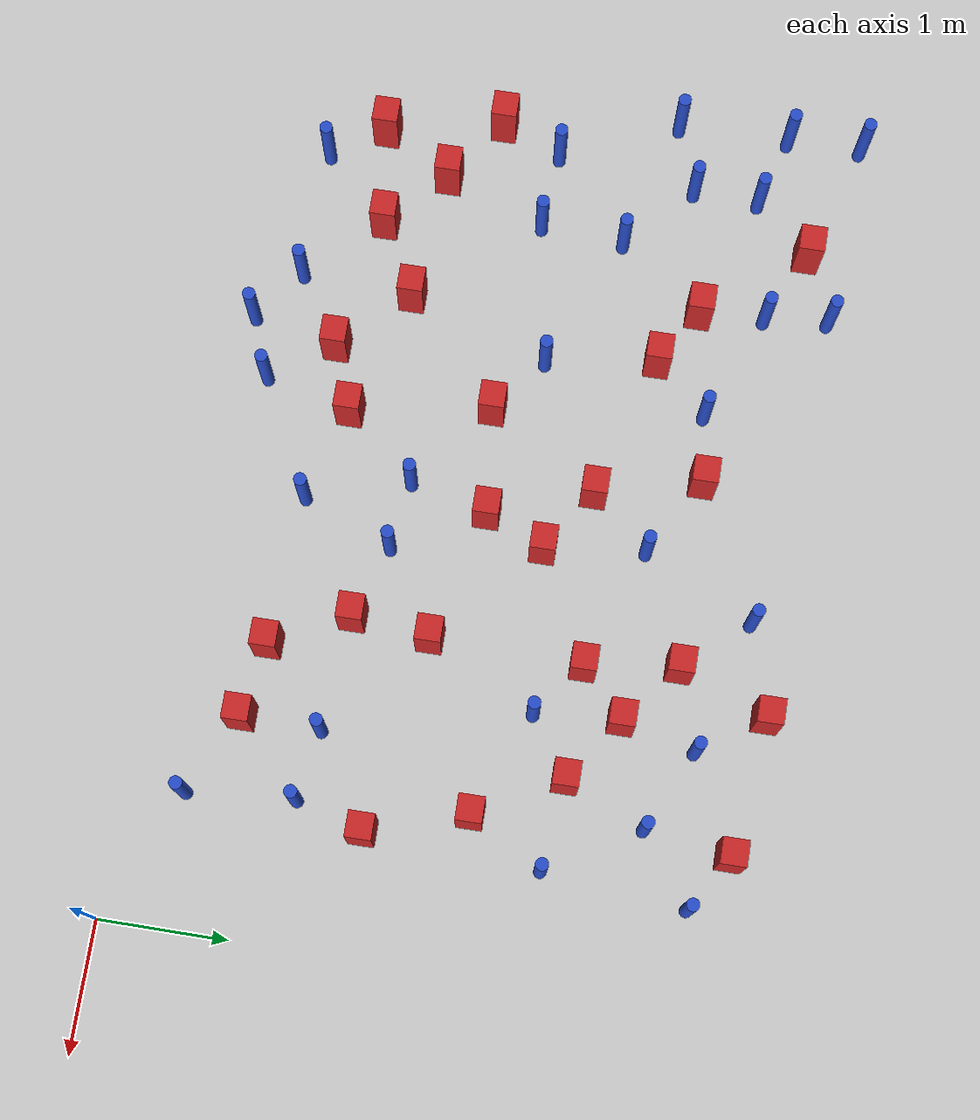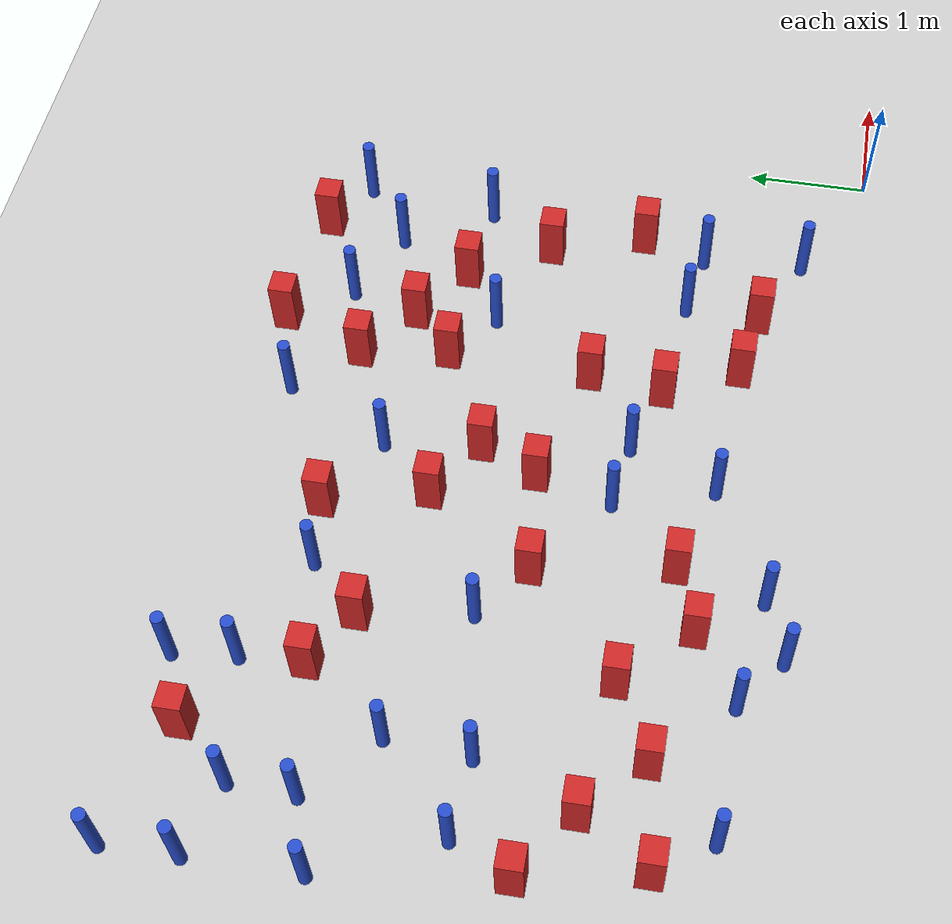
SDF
<sdf version="1.6">
 <world name="default">
  <model name="ground_plane">
   <static>1</static>
   <link name="link">
    <collision name="collision">
     <geometry><plane><normal>0 0 1</normal><size>100 100</size></plane></geometry>
     <surface><friction><ode><mu>100</mu><mu2>50</mu2></ode></friction></surface>
    </collision>
    <visual name="visual">
     <cast_shadows>0</cast_shadows>
     <geometry><plane><normal>0 0 1</normal><size>100 100</size></plane></geometry>
     <material>
      <ambient>1.0 1.0 1.0 1.0</ambient>
      <diffuse>0.8 0.8 0.8 1.0</diffuse>
      <specular>0.01 0.01 0.01 1.000000</specular>
     </material>
    </visual>
   </link>
  </model>
  <model name="pole_obstacle2">
   <static>true</static>
   <pose>-0.739905669948 4.30533973566 2.88873142074e-08 -9.90536689661e-09 4.60219948993e-07 -1.20965994957e-07</pose>
   <link name="link">
    <pose>0 0 0.3 0 -0 0</pose>
    <inertial>
     <mass>1</mass>
     <inertia><ixx>0.145833</ixx><ixy>0</ixy><ixz>0</ixz><iyy>0.145833</iyy><iyz>0</iyz><izz>0.125</izz></inertia>
    </inertial>
    <collision name="collision">
     <geometry><cylinder><radius>0.05</radius><length>.6</length></cylinder></geometry>
    </collision>
    <visual name="visual">
     <geometry><cylinder><radius>0.05</radius><length>.6</length></cylinder></geometry>
     <material>
      <script><name>Gazebo/Blue</name><uri>file://media/materials/scripts/gazebo.material</uri></script>
     </material>
    </visual>
   </link>
  </model>
  <model name="pole_obstacle3">
   <static>true</static>
   <pose>-4.32424077748 0.510078708993 2.88873142074e-08 -9.90536689326e-09 4.60219949001e-07 -1.20965994954e-07</pose>
   <link name="link">
    <pose>0 0 0.3 0 -0 0</pose>
    <inertial>
     <mass>1</mass>
     <inertia><ixx>0.145833</ixx><ixy>0</ixy><ixz>0</ixz><iyy>0.145833</iyy><iyz>0</iyz><izz>0.125</izz></inertia>
    </inertial>
    <collision name="collision">
     <geometry><cylinder><radius>0.05</radius><length>.6</length></cylinder></geometry>
    </collision>
    <visual name="visual">
     <geometry><cylinder><radius>0.05</radius><length>.6</length></cylinder></geometry>
     <material>
      <script><name>Gazebo/Blue</name><uri>file://media/materials/scripts/gazebo.material</uri></script>
     </material>
    </visual>
   </link>
  </model>
  <model name="square_post_obstacle7">
   <static>true</static>
   <pose>-2.24618304108 4.6984372265 8.22691968438e-08 7.2212513382e-06 -7.54495500217e-07 2.29674213826e-05</pose>
   <link name="link">
    <pose>0 0 0.25 0 -0 0</pose>
    <inertial>
     <mass>100</mass>
     <inertia>
      <ixx>0.166667</ixx>
      <ixy>0</ixy>
      <ixz>0</ixz>
      <iyy>0.166667</iyy>
      <iyz>0</iyz>
      <izz>0.166667</izz>
     </inertia>
    </inertial>
    <collision name="collision"><geometry><box><size>.2 .2 .5</size></box></geometry></collision>
    <visual name="visual">
     <geometry><box><size>.2 .2 .5</size></box></geometry>
     <material>
      <script><name>Gazebo/Red</name><uri>file://media/materials/scripts/gazebo.material</uri></script>
     </material>
    </visual>
   </link>
  </model>
  <model name="square_post_obstacle14">
   <static>true</static>
   <pose>-5.36833786848 3.77041327687 8.22691968438e-08 7.2212513382e-06 -7.54495500217e-07 2.29674213826e-05</pose>
   <link name="link">
    <pose>0 0 0.25 0 -0 0</pose>
    <inertial>
     <mass>100</mass>
     <inertia>
      <ixx>0.166667</ixx>
      <ixy>0</ixy>
      <ixz>0</ixz>
      <iyy>0.166667</iyy>
      <iyz>0</iyz>
      <izz>0.166667</izz>
     </inertia>
    </inertial>
    <collision name="collision"><geometry><box><size>.2 .2 .5</size></box></geometry></collision>
    <visual name="visual">
     <geometry><box><size>.2 .2 .5</size></box></geometry>
     <material>
      <script><name>Gazebo/Red</name><uri>file://media/materials/scripts/gazebo.material</uri></script>
     </material>
    </visual>
   </link>
  </model>
  <model name="pole_obstacle9">
   <static>true</static>
   <pose>-6.37685946599 3.59660607227 2.88873142074e-08 -9.90536690245e-09 4.6021994898e-07 -1.20965994966e-07</pose>
   <link name="link">
    <pose>0 0 0.3 0 -0 0</pose>
    <inertial>
     <mass>1</mass>
     <inertia><ixx>0.145833</ixx><ixy>0</ixy><ixz>0</ixz><iyy>0.145833</iyy><iyz>0</iyz><izz>0.125</izz></inertia>
    </inertial>
    <collision name="collision">
     <geometry><cylinder><radius>0.05</radius><length>.6</length></cylinder></geometry>
    </collision>
    <visual name="visual">
     <geometry><cylinder><radius>0.05</radius><length>.6</length></cylinder></geometry>
     <material>
      <script><name>Gazebo/Blue</name><uri>file://media/materials/scripts/gazebo.material</uri></script>
     </material>
    </visual>
   </link>
  </model>
  <model name="square_post_obstacle18">
   <static>true</static>
   <pose>-3.78768500839 3.16812446144 8.22691968438e-08 7.2212513382e-06 -7.54495500217e-07 2.29674213826e-05</pose>
   <link name="link">
    <pose>0 0 0.25 0 -0 0</pose>
    <inertial>
     <mass>100</mass>
     <inertia>
      <ixx>0.166667</ixx>
      <ixy>0</ixy>
      <ixz>0</ixz>
      <iyy>0.166667</iyy>
      <iyz>0</iyz>
      <izz>0.166667</izz>
     </inertia>
    </inertial>
    <collision name="collision"><geometry><box><size>.2 .2 .5</size></box></geometry></collision>
    <visual name="visual">
     <geometry><box><size>.2 .2 .5</size></box></geometry>
     <material>
      <script><name>Gazebo/Red</name><uri>file://media/materials/scripts/gazebo.material</uri></script>
     </material>
    </visual>
   </link>
  </model>
  <model name="pole_obstacle15">
   <static>true</static>
   <pose>-3.65093043293 1.76417876774 2.88873142074e-08 -9.90536689395e-09 4.60219949e-07 -1.20965994953e-07</pose>
   <link name="link">
    <pose>0 0 0.3 0 -0 0</pose>
    <inertial>
     <mass>1</mass>
     <inertia><ixx>0.145833</ixx><ixy>0</ixy><ixz>0</ixz><iyy>0.145833</iyy><iyz>0</iyz><izz>0.125</izz></inertia>
    </inertial>
    <collision name="collision">
     <geometry><cylinder><radius>0.05</radius><length>.6</length></cylinder></geometry>
    </collision>
    <visual name="visual">
     <geometry><cylinder><radius>0.05</radius><length>.6</length></cylinder></geometry>
     <material>
      <script><name>Gazebo/Blue</name><uri>file://media/materials/scripts/gazebo.material</uri></script>
     </material>
    </visual>
   </link>
  </model>
  <model name="square_post_obstacle23">
   <static>true</static>
   <pose>-2.53691966221 1.50098403107 8.22691968438e-08 7.2212513382e-06 -7.54495500217e-07 2.29674213826e-05</pose>
   <link name="link">
    <pose>0 0 0.25 0 -0 0</pose>
    <inertial>
     <mass>100</mass>
     <inertia>
      <ixx>0.166667</ixx>
      <ixy>0</ixy>
      <ixz>0</ixz>
      <iyy>0.166667</iyy>
      <iyz>0</iyz>
      <izz>0.166667</izz>
     </inertia>
    </inertial>
    <collision name="collision"><geometry><box><size>.2 .2 .5</size></box></geometry></collision>
    <visual name="visual">
     <geometry><box><size>.2 .2 .5</size></box></geometry>
     <material>
      <script><name>Gazebo/Red</name><uri>file://media/materials/scripts/gazebo.material</uri></script>
     </material>
    </visual>
   </link>
  </model>
  <model name="pole_obstacle30">
   <static>true</static>
   <pose>-5.90272589628 2.439713726 2.88873142074e-08 -9.90536690245e-09 4.6021994898e-07 -1.20965994966e-07</pose>
   <link name="link">
    <pose>0 0 0.3 0 -0 0</pose>
    <inertial>
     <mass>1</mass>
     <inertia><ixx>0.145833</ixx><ixy>0</ixy><ixz>0</ixz><iyy>0.145833</iyy><iyz>0</iyz><izz>0.125</izz></inertia>
    </inertial>
    <collision name="collision">
     <geometry><cylinder><radius>0.05</radius><length>.6</length></cylinder></geometry>
    </collision>
    <visual name="visual">
     <geometry><cylinder><radius>0.05</radius><length>.6</length></cylinder></geometry>
     <material>
      <script><name>Gazebo/Blue</name><uri>file://media/materials/scripts/gazebo.material</uri></script>
     </material>
    </visual>
   </link>
  </model>
  <model name="pole_obstacle37">
   <static>true</static>
   <pose>-3.11296753284 1.68805682035 2.88873142074e-08 -9.90536691123e-09 4.60219948959e-07 -1.20965994982e-07</pose>
   <link name="link">
    <pose>0 0 0.3 0 -0 0</pose>
    <inertial>
     <mass>1</mass>
     <inertia><ixx>0.145833</ixx><ixy>0</ixy><ixz>0</ixz><iyy>0.145833</iyy><iyz>0</iyz><izz>0.125</izz></inertia>
    </inertial>
    <collision name="collision">
     <geometry><cylinder><radius>0.05</radius><length>.6</length></cylinder></geometry>
    </collision>
    <visual name="visual">
     <geometry><cylinder><radius>0.05</radius><length>.6</length></cylinder></geometry>
     <material>
      <script><name>Gazebo/Blue</name><uri>file://media/materials/scripts/gazebo.material</uri></script>
     </material>
    </visual>
   </link>
  </model>
  <model name="pole_obstacle45">
   <static>true</static>
   <pose>-6.92549018828 4.28441524559 2.88873142074e-08 -9.90536690842e-09 4.60219948965e-07 -1.20965994976e-07</pose>
   <link name="link">
    <pose>0 0 0.3 0 -0 0</pose>
    <inertial>
     <mass>1</mass>
     <inertia><ixx>0.145833</ixx><ixy>0</ixy><ixz>0</ixz><iyy>0.145833</iyy><iyz>0</iyz><izz>0.125</izz></inertia>
    </inertial>
    <collision name="collision">
     <geometry><cylinder><radius>0.05</radius><length>.6</length></cylinder></geometry>
    </collision>
    <visual name="visual">
     <geometry><cylinder><radius>0.05</radius><length>.6</length></cylinder></geometry>
     <material>
      <script><name>Gazebo/Blue</name><uri>file://media/materials/scripts/gazebo.material</uri></script>
     </material>
    </visual>
   </link>
  </model>
  <model name="square_post_obstacle42">
   <static>true</static>
   <pose>-6.523114402 1.09792650419 8.22691968438e-08 7.2212513382e-06 -7.54495500217e-07 2.29674213826e-05</pose>
   <link name="link">
    <pose>0 0 0.25 0 -0 0</pose>
    <inertial>
     <mass>100</mass>
     <inertia>
      <ixx>0.166667</ixx>
      <ixy>0</ixy>
      <ixz>0</ixz>
      <iyy>0.166667</iyy>
      <iyz>0</iyz>
      <izz>0.166667</izz>
     </inertia>
    </inertial>
    <collision name="collision"><geometry><box><size>.2 .2 .5</size></box></geometry></collision>
    <visual name="visual">
     <geometry><box><size>.2 .2 .5</size></box></geometry>
     <material>
      <script><name>Gazebo/Red</name><uri>file://media/materials/scripts/gazebo.material</uri></script>
     </material>
    </visual>
   </link>
  </model>
  <model name="pole_obstacle52">
   <static>true</static>
   <pose>-2.95070763722 4.49875789923 2.88873142074e-08 -9.90536689859e-09 4.60219948989e-07 -1.20965994961e-07</pose>
   <link name="link">
    <pose>0 0 0.3 0 -0 0</pose>
    <inertial>
     <mass>1</mass>
     <inertia><ixx>0.145833</ixx><ixy>0</ixy><ixz>0</ixz><iyy>0.145833</iyy><iyz>0</iyz><izz>0.125</izz></inertia>
    </inertial>
    <collision name="collision">
     <geometry><cylinder><radius>0.05</radius><length>.6</length></cylinder></geometry>
    </collision>
    <visual name="visual">
     <geometry><cylinder><radius>0.05</radius><length>.6</length></cylinder></geometry>
     <material>
      <script><name>Gazebo/Blue</name><uri>file://media/materials/scripts/gazebo.material</uri></script>
     </material>
    </visual>
   </link>
  </model>
  <model name="pole_obstacle55">
   <static>true</static>
   <pose>-1.02313513824 0.48720591811 2.88873142074e-08 -9.90536689777e-09 4.60219948991e-07 -1.2096599496e-07</pose>
   <link name="link">
    <pose>0 0 0.3 0 -0 0</pose>
    <inertial>
     <mass>1</mass>
     <inertia><ixx>0.145833</ixx><ixy>0</ixy><ixz>0</ixz><iyy>0.145833</iyy><iyz>0</iyz><izz>0.125</izz></inertia>
    </inertial>
    <collision name="collision">
     <geometry><cylinder><radius>0.05</radius><length>.6</length></cylinder></geometry>
    </collision>
    <visual name="visual">
     <geometry><cylinder><radius>0.05</radius><length>.6</length></cylinder></geometry>
     <material>
      <script><name>Gazebo/Blue</name><uri>file://media/materials/scripts/gazebo.material</uri></script>
     </material>
    </visual>
   </link>
  </model>
  <model name="square_post_obstacle65">
   <static>true</static>
   <pose>-3.288326728 2.84678825988 8.22691968438e-08 7.2212513382e-06 -7.54495500217e-07 2.29674213826e-05</pose>
   <link name="link">
    <pose>0 0 0.25 0 -0 0</pose>
    <inertial>
     <mass>100</mass>
     <inertia>
      <ixx>0.166667</ixx>
      <ixy>0</ixy>
      <ixz>0</ixz>
      <iyy>0.166667</iyy>
      <iyz>0</iyz>
      <izz>0.166667</izz>
     </inertia>
    </inertial>
    <collision name="collision"><geometry><box><size>.2 .2 .5</size></box></geometry></collision>
    <visual name="visual">
     <geometry><box><size>.2 .2 .5</size></box></geometry>
     <material>
      <script><name>Gazebo/Red</name><uri>file://media/materials/scripts/gazebo.material</uri></script>
     </material>
    </visual>
   </link>
  </model>
  <model name="square_post_obstacle73">
   <static>true</static>
   <pose>-2.23521891221 0.903716413286 8.22691968438e-08 7.2212513382e-06 -7.54495500217e-07 2.29674213826e-05</pose>
   <link name="link">
    <pose>0 0 0.25 0 -0 0</pose>
    <inertial>
     <mass>100</mass>
     <inertia>
      <ixx>0.166667</ixx>
      <ixy>0</ixy>
      <ixz>0</ixz>
      <iyy>0.166667</iyy>
      <iyz>0</iyz>
      <izz>0.166667</izz>
     </inertia>
    </inertial>
    <collision name="collision"><geometry><box><size>.2 .2 .5</size></box></geometry></collision>
    <visual name="visual">
     <geometry><box><size>.2 .2 .5</size></box></geometry>
     <material>
      <script><name>Gazebo/Red</name><uri>file://media/materials/scripts/gazebo.material</uri></script>
     </material>
    </visual>
   </link>
  </model>
  <model name="square_post_obstacle77">
   <static>true</static>
   <pose>-3.99814178708 3.98266880016 8.22691968438e-08 7.2212513382e-06 -7.54495500217e-07 2.29674213826e-05</pose>
   <link name="link">
    <pose>0 0 0.25 0 -0 0</pose>
    <inertial>
     <mass>100</mass>
     <inertia>
      <ixx>0.166667</ixx>
      <ixy>0</ixy>
      <ixz>0</ixz>
      <iyy>0.166667</iyy>
      <iyz>0</iyz>
      <izz>0.166667</izz>
     </inertia>
    </inertial>
    <collision name="collision"><geometry><box><size>.2 .2 .5</size></box></geometry></collision>
    <visual name="visual">
     <geometry><box><size>.2 .2 .5</size></box></geometry>
     <material>
      <script><name>Gazebo/Red</name><uri>file://media/materials/scripts/gazebo.material</uri></script>
     </material>
    </visual>
   </link>
  </model>
  <model name="pole_obstacle81">
   <static>true</static>
   <pose>-3.38094644837 3.62961909738 2.88873142074e-08 -9.90536690232e-09 4.6021994898e-07 -1.20965994968e-07</pose>
   <link name="link">
    <pose>0 0 0.3 0 -0 0</pose>
    <inertial>
     <mass>1</mass>
     <inertia><ixx>0.145833</ixx><ixy>0</ixy><ixz>0</ixz><iyy>0.145833</iyy><iyz>0</iyz><izz>0.125</izz></inertia>
    </inertial>
    <collision name="collision">
     <geometry><cylinder><radius>0.05</radius><length>.6</length></cylinder></geometry>
    </collision>
    <visual name="visual">
     <geometry><cylinder><radius>0.05</radius><length>.6</length></cylinder></geometry>
     <material>
      <script><name>Gazebo/Blue</name><uri>file://media/materials/scripts/gazebo.material</uri></script>
     </material>
    </visual>
   </link>
  </model>
  <model name="square_post_obstacle82">
   <static>true</static>
   <pose>-6.71375972202 2.01840129717 8.22691968438e-08 7.2212513382e-06 -7.54495500217e-07 2.29674213826e-05</pose>
   <link name="link">
    <pose>0 0 0.25 0 -0 0</pose>
    <inertial>
     <mass>100</mass>
     <inertia>
      <ixx>0.166667</ixx>
      <ixy>0</ixy>
      <ixz>0</ixz>
      <iyy>0.166667</iyy>
      <iyz>0</iyz>
      <izz>0.166667</izz>
     </inertia>
    </inertial>
    <collision name="collision"><geometry><box><size>.2 .2 .5</size></box></geometry></collision>
    <visual name="visual">
     <geometry><box><size>.2 .2 .5</size></box></geometry>
     <material>
      <script><name>Gazebo/Red</name><uri>file://media/materials/scripts/gazebo.material</uri></script>
     </material>
    </visual>
   </link>
  </model>
  <model name="pole_obstacle93">
   <static>true</static>
   <pose>-4.77711233812 2.63697458559 2.88873142074e-08 -9.90536690245e-09 4.6021994898e-07 -1.20965994966e-07</pose>
   <link name="link">
    <pose>0 0 0.3 0 -0 0</pose>
    <inertial>
     <mass>1</mass>
     <inertia><ixx>0.145833</ixx><ixy>0</ixy><ixz>0</ixz><iyy>0.145833</iyy><iyz>0</iyz><izz>0.125</izz></inertia>
    </inertial>
    <collision name="collision">
     <geometry><cylinder><radius>0.05</radius><length>.6</length></cylinder></geometry>
    </collision>
    <visual name="visual">
     <geometry><cylinder><radius>0.05</radius><length>.6</length></cylinder></geometry>
     <material>
      <script><name>Gazebo/Blue</name><uri>file://media/materials/scripts/gazebo.material</uri></script>
     </material>
    </visual>
   </link>
  </model>
  <model name="square_post_obstacle83">
   <static>true</static>
   <pose>-1.17336924615 4.5640159241 8.22691968438e-08 7.2212513382e-06 -7.54495500217e-07 2.29674213826e-05</pose>
   <link name="link">
    <pose>0 0 0.25 0 -0 0</pose>
    <inertial>
     <mass>100</mass>
     <inertia>
      <ixx>0.166667</ixx>
      <ixy>0</ixy>
      <ixz>0</ixz>
      <iyy>0.166667</iyy>
      <iyz>0</iyz>
      <izz>0.166667</izz>
     </inertia>
    </inertial>
    <collision name="collision"><geometry><box><size>.2 .2 .5</size></box></geometry></collision>
    <visual name="visual">
     <geometry><box><size>.2 .2 .5</size></box></geometry>
     <material>
      <script><name>Gazebo/Red</name><uri>file://media/materials/scripts/gazebo.material</uri></script>
     </material>
    </visual>
   </link>
  </model>
  <model name="pole_obstacle95">
   <static>true</static>
   <pose>-1.9058117612 4.20478084946 2.88873142074e-08 -9.90536689852e-09 4.60219948989e-07 -1.2096599496e-07</pose>
   <link name="link">
    <pose>0 0 0.3 0 -0 0</pose>
    <inertial>
     <mass>1</mass>
     <inertia><ixx>0.145833</ixx><ixy>0</ixy><ixz>0</ixz><iyy>0.145833</iyy><iyz>0</iyz><izz>0.125</izz></inertia>
    </inertial>
    <collision name="collision">
     <geometry><cylinder><radius>0.05</radius><length>.6</length></cylinder></geometry>
    </collision>
    <visual name="visual">
     <geometry><cylinder><radius>0.05</radius><length>.6</length></cylinder></geometry>
     <material>
      <script><name>Gazebo/Blue</name><uri>file://media/materials/scripts/gazebo.material</uri></script>
     </material>
    </visual>
   </link>
  </model>
  <model name="pole_obstacle96">
   <static>true</static>
   <pose>-1.63599347347 1.41086379498 2.88873142074e-08 -9.90536689672e-09 4.60219948993e-07 -1.20965994959e-07</pose>
   <link name="link">
    <pose>0 0 0.3 0 -0 0</pose>
    <inertial>
     <mass>1</mass>
     <inertia><ixx>0.145833</ixx><ixy>0</ixy><ixz>0</ixz><iyy>0.145833</iyy><iyz>0</iyz><izz>0.125</izz></inertia>
    </inertial>
    <collision name="collision">
     <geometry><cylinder><radius>0.05</radius><length>.6</length></cylinder></geometry>
    </collision>
    <visual name="visual">
     <geometry><cylinder><radius>0.05</radius><length>.6</length></cylinder></geometry>
     <material>
      <script><name>Gazebo/Blue</name><uri>file://media/materials/scripts/gazebo.material</uri></script>
     </material>
    </visual>
   </link>
  </model>
  <model name="square_post_obstacle84">
   <static>true</static>
   <pose>-1.65721172353 0.803332846932 8.22691968438e-08 7.2212513382e-06 -7.54495500217e-07 2.29674213826e-05</pose>
   <link name="link">
    <pose>0 0 0.25 0 -0 0</pose>
    <inertial>
     <mass>100</mass>
     <inertia>
      <ixx>0.166667</ixx>
      <ixy>0</ixy>
      <ixz>0</ixz>
      <iyy>0.166667</iyy>
      <iyz>0</iyz>
      <izz>0.166667</izz>
     </inertia>
    </inertial>
    <collision name="collision"><geometry><box><size>.2 .2 .5</size></box></geometry></collision>
    <visual name="visual">
     <geometry><box><size>.2 .2 .5</size></box></geometry>
     <material>
      <script><name>Gazebo/Red</name><uri>file://media/materials/scripts/gazebo.material</uri></script>
     </material>
    </visual>
   </link>
  </model>
  <model name="pole_obstacle106">
   <static>true</static>
   <pose>-4.80032186561 0.327413639332 2.88873142074e-08 -9.90536689981e-09 4.60219948986e-07 -1.20965994962e-07</pose>
   <link name="link">
    <pose>0 0 0.3 0 -0 0</pose>
    <inertial>
     <mass>1</mass>
     <inertia><ixx>0.145833</ixx><ixy>0</ixy><ixz>0</ixz><iyy>0.145833</iyy><iyz>0</iyz><izz>0.125</izz></inertia>
    </inertial>
    <collision name="collision">
     <geometry><cylinder><radius>0.05</radius><length>.6</length></cylinder></geometry>
    </collision>
    <visual name="visual">
     <geometry><cylinder><radius>0.05</radius><length>.6</length></cylinder></geometry>
     <material>
      <script><name>Gazebo/Blue</name><uri>file://media/materials/scripts/gazebo.material</uri></script>
     </material>
    </visual>
   </link>
  </model>
  <model name="pole_obstacle107">
   <static>true</static>
   <pose>-6.51544508099 2.49275649995 2.88873142074e-08 -9.90536690245e-09 4.6021994898e-07 -1.20965994966e-07</pose>
   <link name="link">
    <pose>0 0 0.3 0 -0 0</pose>
    <inertial>
     <mass>1</mass>
     <inertia><ixx>0.145833</ixx><ixy>0</ixy><ixz>0</ixz><iyy>0.145833</iyy><iyz>0</iyz><izz>0.125</izz></inertia>
    </inertial>
    <collision name="collision">
     <geometry><cylinder><radius>0.05</radius><length>.6</length></cylinder></geometry>
    </collision>
    <visual name="visual">
     <geometry><cylinder><radius>0.05</radius><length>.6</length></cylinder></geometry>
     <material>
      <script><name>Gazebo/Blue</name><uri>file://media/materials/scripts/gazebo.material</uri></script>
     </material>
    </visual>
   </link>
  </model>
  <model name="pole_obstacle110">
   <static>true</static>
   <pose>-6.36025374904 4.11488553334 2.88873142074e-08 -9.90536690842e-09 4.60219948965e-07 -1.20965994976e-07</pose>
   <link name="link">
    <pose>0 0 0.3 0 -0 0</pose>
    <inertial>
     <mass>1</mass>
     <inertia><ixx>0.145833</ixx><ixy>0</ixy><ixz>0</ixz><iyy>0.145833</iyy><iyz>0</iyz><izz>0.125</izz></inertia>
    </inertial>
    <collision name="collision">
     <geometry><cylinder><radius>0.05</radius><length>.6</length></cylinder></geometry>
    </collision>
    <visual name="visual">
     <geometry><cylinder><radius>0.05</radius><length>.6</length></cylinder></geometry>
     <material>
      <script><name>Gazebo/Blue</name><uri>file://media/materials/scripts/gazebo.material</uri></script>
     </material>
    </visual>
   </link>
  </model>
  <model name="square_post_obstacle99">
   <static>true</static>
   <pose>-1.18576144169 2.62064687137 8.22691968438e-08 7.2212513382e-06 -7.54495500217e-07 2.29674213826e-05</pose>
   <link name="link">
    <pose>0 0 0.25 0 -0 0</pose>
    <inertial>
     <mass>100</mass>
     <inertia>
      <ixx>0.166667</ixx>
      <ixy>0</ixy>
      <ixz>0</ixz>
      <iyy>0.166667</iyy>
      <iyz>0</iyz>
      <izz>0.166667</izz>
     </inertia>
    </inertial>
    <collision name="collision"><geometry><box><size>.2 .2 .5</size></box></geometry></collision>
    <visual name="visual">
     <geometry><box><size>.2 .2 .5</size></box></geometry>
     <material>
      <script><name>Gazebo/Red</name><uri>file://media/materials/scripts/gazebo.material</uri></script>
     </material>
    </visual>
   </link>
  </model>
  <model name="pole_obstacle117">
   <static>true</static>
   <pose>-5.85557484782 3.10100934717 2.88873142074e-08 -9.90536690245e-09 4.6021994898e-07 -1.20965994966e-07</pose>
   <link name="link">
    <pose>0 0 0.3 0 -0 0</pose>
    <inertial>
     <mass>1</mass>
     <inertia><ixx>0.145833</ixx><ixy>0</ixy><ixz>0</ixz><iyy>0.145833</iyy><iyz>0</iyz><izz>0.125</izz></inertia>
    </inertial>
    <collision name="collision">
     <geometry><cylinder><radius>0.05</radius><length>.6</length></cylinder></geometry>
    </collision>
    <visual name="visual">
     <geometry><cylinder><radius>0.05</radius><length>.6</length></cylinder></geometry>
     <material>
      <script><name>Gazebo/Blue</name><uri>file://media/materials/scripts/gazebo.material</uri></script>
     </material>
    </visual>
   </link>
  </model>
  <model name="square_post_obstacle103">
   <static>true</static>
   <pose>-5.15998076664 1.5240299749 8.22691968438e-08 7.2212513382e-06 -7.54495500217e-07 2.29674213826e-05</pose>
   <link name="link">
    <pose>0 0 0.25 0 -0 0</pose>
    <inertial>
     <mass>100</mass>
     <inertia>
      <ixx>0.166667</ixx>
      <ixy>0</ixy>
      <ixz>0</ixz>
      <iyy>0.166667</iyy>
      <iyz>0</iyz>
      <izz>0.166667</izz>
     </inertia>
    </inertial>
    <collision name="collision"><geometry><box><size>.2 .2 .5</size></box></geometry></collision>
    <visual name="visual">
     <geometry><box><size>.2 .2 .5</size></box></geometry>
     <material>
      <script><name>Gazebo/Red</name><uri>file://media/materials/scripts/gazebo.material</uri></script>
     </material>
    </visual>
   </link>
  </model>
  <model name="square_post_obstacle110">
   <static>true</static>
   <pose>-2.52775763593 4.00238239355 8.22691968438e-08 7.22125133819e-06 -7.54495500217e-07 2.29674213826e-05</pose>
   <link name="link">
    <pose>0 0 0.25 0 -0 0</pose>
    <inertial>
     <mass>100</mass>
     <inertia>
      <ixx>0.166667</ixx>
      <ixy>0</ixy>
      <ixz>0</ixz>
      <iyy>0.166667</iyy>
      <iyz>0</iyz>
      <izz>0.166667</izz>
     </inertia>
    </inertial>
    <collision name="collision"><geometry><box><size>.2 .2 .5</size></box></geometry></collision>
    <visual name="visual">
     <geometry><box><size>.2 .2 .5</size></box></geometry>
     <material>
      <script><name>Gazebo/Red</name><uri>file://media/materials/scripts/gazebo.material</uri></script>
     </material>
    </visual>
   </link>
  </model>
  <model name="square_post_obstacle119">
   <static>true</static>
   <pose>-1.55709106499 3.27843104379 8.22691968438e-08 7.2212513382e-06 -7.54495500217e-07 2.29674213826e-05</pose>
   <link name="link">
    <pose>0 0 0.25 0 -0 0</pose>
    <inertial>
     <mass>100</mass>
     <inertia>
      <ixx>0.166667</ixx>
      <ixy>0</ixy>
      <ixz>0</ixz>
      <iyy>0.166667</iyy>
      <iyz>0</iyz>
      <izz>0.166667</izz>
     </inertia>
    </inertial>
    <collision name="collision"><geometry><box><size>.2 .2 .5</size></box></geometry></collision>
    <visual name="visual">
     <geometry><box><size>.2 .2 .5</size></box></geometry>
     <material>
      <script><name>Gazebo/Red</name><uri>file://media/materials/scripts/gazebo.material</uri></script>
     </material>
    </visual>
   </link>
  </model>
  <model name="square_post_obstacle123">
   <static>true</static>
   <pose>-4.33158824002 2.29189849963 8.22691968438e-08 7.2212513382e-06 -7.54495500217e-07 2.29674213826e-05</pose>
   <link name="link">
    <pose>0 0 0.25 0 -0 0</pose>
    <inertial>
     <mass>100</mass>
     <inertia>
      <ixx>0.166667</ixx>
      <ixy>0</ixy>
      <ixz>0</ixz>
      <iyy>0.166667</iyy>
      <iyz>0</iyz>
      <izz>0.166667</izz>
     </inertia>
    </inertial>
    <collision name="collision"><geometry><box><size>.2 .2 .5</size></box></geometry></collision>
    <visual name="visual">
     <geometry><box><size>.2 .2 .5</size></box></geometry>
     <material>
      <script><name>Gazebo/Red</name><uri>file://media/materials/scripts/gazebo.material</uri></script>
     </material>
    </visual>
   </link>
  </model>
  <model name="pole_obstacle145">
   <static>true</static>
   <pose>-1.09117436767 1.31951620382 2.88873142074e-08 -9.90536689672e-09 4.60219948993e-07 -1.20965994959e-07</pose>
   <link name="link">
    <pose>0 0 0.3 0 -0 0</pose>
    <inertial>
     <mass>1</mass>
     <inertia><ixx>0.145833</ixx><ixy>0</ixy><ixz>0</ixz><iyy>0.145833</iyy><iyz>0</iyz><izz>0.125</izz></inertia>
    </inertial>
    <collision name="collision">
     <geometry><cylinder><radius>0.05</radius><length>.6</length></cylinder></geometry>
    </collision>
    <visual name="visual">
     <geometry><cylinder><radius>0.05</radius><length>.6</length></cylinder></geometry>
     <material>
      <script><name>Gazebo/Blue</name><uri>file://media/materials/scripts/gazebo.material</uri></script>
     </material>
    </visual>
   </link>
  </model>
  <model name="pole_obstacle149">
   <static>true</static>
   <pose>-6.91604050965 3.40864220606 2.88873142074e-08 -9.90536690245e-09 4.6021994898e-07 -1.20965994966e-07</pose>
   <link name="link">
    <pose>0 0 0.3 0 -0 0</pose>
    <inertial>
     <mass>1</mass>
     <inertia><ixx>0.145833</ixx><ixy>0</ixy><ixz>0</ixz><iyy>0.145833</iyy><iyz>0</iyz><izz>0.125</izz></inertia>
    </inertial>
    <collision name="collision">
     <geometry><cylinder><radius>0.05</radius><length>.6</length></cylinder></geometry>
    </collision>
    <visual name="visual">
     <geometry><cylinder><radius>0.05</radius><length>.6</length></cylinder></geometry>
     <material>
      <script><name>Gazebo/Blue</name><uri>file://media/materials/scripts/gazebo.material</uri></script>
     </material>
    </visual>
   </link>
  </model>
  <model name="pole_obstacle157">
   <static>true</static>
   <pose>-2.00885231102 2.96548535239 2.88873142074e-08 -9.90536692171e-09 4.60219948934e-07 -1.20965994985e-07</pose>
   <link name="link">
    <pose>0 0 0.3 0 -0 0</pose>
    <inertial>
     <mass>1</mass>
     <inertia><ixx>0.145833</ixx><ixy>0</ixy><ixz>0</ixz><iyy>0.145833</iyy><iyz>0</iyz><izz>0.125</izz></inertia>
    </inertial>
    <collision name="collision">
     <geometry><cylinder><radius>0.05</radius><length>.6</length></cylinder></geometry>
    </collision>
    <visual name="visual">
     <geometry><cylinder><radius>0.05</radius><length>.6</length></cylinder></geometry>
     <material>
      <script><name>Gazebo/Blue</name><uri>file://media/materials/scripts/gazebo.material</uri></script>
     </material>
    </visual>
   </link>
  </model>
  <model name="square_post_obstacle154">
   <static>true</static>
   <pose>-2.46216452877 2.10649653486 8.22691968438e-08 7.2212513382e-06 -7.54495500217e-07 2.29674213826e-05</pose>
   <link name="link">
    <pose>0 0 0.25 0 -0 0</pose>
    <inertial>
     <mass>100</mass>
     <inertia>
      <ixx>0.166667</ixx>
      <ixy>0</ixy>
      <ixz>0</ixz>
      <iyy>0.166667</iyy>
      <iyz>0</iyz>
      <izz>0.166667</izz>
     </inertia>
    </inertial>
    <collision name="collision"><geometry><box><size>.2 .2 .5</size></box></geometry></collision>
    <visual name="visual">
     <geometry><box><size>.2 .2 .5</size></box></geometry>
     <material>
      <script><name>Gazebo/Red</name><uri>file://media/materials/scripts/gazebo.material</uri></script>
     </material>
    </visual>
   </link>
  </model>
  <model name="pole_obstacle168">
   <static>true</static>
   <pose>-1.2734969292 3.90742918374 2.88873142074e-08 -9.90536689791e-09 4.6021994899e-07 -1.20965994959e-07</pose>
   <link name="link">
    <pose>0 0 0.3 0 -0 0</pose>
    <inertial>
     <mass>1</mass>
     <inertia><ixx>0.145833</ixx><ixy>0</ixy><ixz>0</ixz><iyy>0.145833</iyy><iyz>0</iyz><izz>0.125</izz></inertia>
    </inertial>
    <collision name="collision">
     <geometry><cylinder><radius>0.05</radius><length>.6</length></cylinder></geometry>
    </collision>
    <visual name="visual">
     <geometry><cylinder><radius>0.05</radius><length>.6</length></cylinder></geometry>
     <material>
      <script><name>Gazebo/Blue</name><uri>file://media/materials/scripts/gazebo.material</uri></script>
     </material>
    </visual>
   </link>
  </model>
  <model name="pole_obstacle172">
   <static>true</static>
   <pose>-5.4439127192 4.78435163404 2.88873142074e-08 -9.90536690842e-09 4.60219948965e-07 -1.20965994976e-07</pose>
   <link name="link">
    <pose>0 0 0.3 0 -0 0</pose>
    <inertial>
     <mass>1</mass>
     <inertia><ixx>0.145833</ixx><ixy>0</ixy><ixz>0</ixz><iyy>0.145833</iyy><iyz>0</iyz><izz>0.125</izz></inertia>
    </inertial>
    <collision name="collision">
     <geometry><cylinder><radius>0.05</radius><length>.6</length></cylinder></geometry>
    </collision>
    <visual name="visual">
     <geometry><cylinder><radius>0.05</radius><length>.6</length></cylinder></geometry>
     <material>
      <script><name>Gazebo/Blue</name><uri>file://media/materials/scripts/gazebo.material</uri></script>
     </material>
    </visual>
   </link>
  </model>
  <model name="pole_obstacle181">
   <static>true</static>
   <pose>-6.24860314538 0.673402878228 2.88873142074e-08 -9.90536689837e-09 4.60219948989e-07 -1.2096599496e-07</pose>
   <link name="link">
    <pose>0 0 0.3 0 -0 0</pose>
    <inertial>
     <mass>1</mass>
     <inertia><ixx>0.145833</ixx><ixy>0</ixy><ixz>0</ixz><iyy>0.145833</iyy><iyz>0</iyz><izz>0.125</izz></inertia>
    </inertial>
    <collision name="collision">
     <geometry><cylinder><radius>0.05</radius><length>.6</length></cylinder></geometry>
    </collision>
    <visual name="visual">
     <geometry><cylinder><radius>0.05</radius><length>.6</length></cylinder></geometry>
     <material>
      <script><name>Gazebo/Blue</name><uri>file://media/materials/scripts/gazebo.material</uri></script>
     </material>
    </visual>
   </link>
  </model>
  <model name="square_post_obstacle170">
   <static>true</static>
   <pose>-5.73899004866 1.21156346658 8.22691968438e-08 7.2212513382e-06 -7.54495500217e-07 2.29674213826e-05</pose>
   <link name="link">
    <pose>0 0 0.25 0 -0 0</pose>
    <inertial>
     <mass>100</mass>
     <inertia>
      <ixx>0.166667</ixx>
      <ixy>0</ixy>
      <ixz>0</ixz>
      <iyy>0.166667</iyy>
      <iyz>0</iyz>
      <izz>0.166667</izz>
     </inertia>
    </inertial>
    <collision name="collision"><geometry><box><size>.2 .2 .5</size></box></geometry></collision>
    <visual name="visual">
     <geometry><box><size>.2 .2 .5</size></box></geometry>
     <material>
      <script><name>Gazebo/Red</name><uri>file://media/materials/scripts/gazebo.material</uri></script>
     </material>
    </visual>
   </link>
  </model>
  <model name="square_post_obstacle179">
   <static>true</static>
   <pose>-4.9179381982 3.50337145481 8.22691968438e-08 7.2212513382e-06 -7.54495500217e-07 2.29674213826e-05</pose>
   <link name="link">
    <pose>0 0 0.25 0 -0 0</pose>
    <inertial>
     <mass>100</mass>
     <inertia>
      <ixx>0.166667</ixx>
      <ixy>0</ixy>
      <ixz>0</ixz>
      <iyy>0.166667</iyy>
      <iyz>0</iyz>
      <izz>0.166667</izz>
     </inertia>
    </inertial>
    <collision name="collision"><geometry><box><size>.2 .2 .5</size></box></geometry></collision>
    <visual name="visual">
     <geometry><box><size>.2 .2 .5</size></box></geometry>
     <material>
      <script><name>Gazebo/Red</name><uri>file://media/materials/scripts/gazebo.material</uri></script>
     </material>
    </visual>
   </link>
  </model>
  <model name="square_post_obstacle186">
   <static>true</static>
   <pose>-0.938884540786 1.84792270979 8.22691968438e-08 7.22125133819e-06 -7.54495500217e-07 2.29674213826e-05</pose>
   <link name="link">
    <pose>0 0 0.25 0 -0 0</pose>
    <inertial>
     <mass>100</mass>
     <inertia>
      <ixx>0.166667</ixx>
      <ixy>0</ixy>
      <ixz>0</ixz>
      <iyy>0.166667</iyy>
      <iyz>0</iyz>
      <izz>0.166667</izz>
     </inertia>
    </inertial>
    <collision name="collision"><geometry><box><size>.2 .2 .5</size></box></geometry></collision>
    <visual name="visual">
     <geometry><box><size>.2 .2 .5</size></box></geometry>
     <material>
      <script><name>Gazebo/Red</name><uri>file://media/materials/scripts/gazebo.material</uri></script>
     </material>
    </visual>
   </link>
  </model>
  <model name="square_post_obstacle196">
   <static>true</static>
   <pose>-3.49665446094 2.37985342333 8.22691968438e-08 7.2212513382e-06 -7.54495500217e-07 2.29674213826e-05</pose>
   <link name="link">
    <pose>0 0 0.25 0 -0 0</pose>
    <inertial>
     <mass>100</mass>
     <inertia>
      <ixx>0.166667</ixx>
      <ixy>0</ixy>
      <ixz>0</ixz>
      <iyy>0.166667</iyy>
      <iyz>0</iyz>
      <izz>0.166667</izz>
     </inertia>
    </inertial>
    <collision name="collision"><geometry><box><size>.2 .2 .5</size></box></geometry></collision>
    <visual name="visual">
     <geometry><box><size>.2 .2 .5</size></box></geometry>
     <material>
      <script><name>Gazebo/Red</name><uri>file://media/materials/scripts/gazebo.material</uri></script>
     </material>
    </visual>
   </link>
  </model>
  <model name="pole_obstacle191">
   <static>true</static>
   <pose>-6.93702645593 4.86865823687 2.88873142074e-08 -9.90536690842e-09 4.60219948965e-07 -1.20965994976e-07</pose>
   <link name="link">
    <pose>0 0 0.3 0 -0 0</pose>
    <inertial>
     <mass>1</mass>
     <inertia><ixx>0.145833</ixx><ixy>0</ixy><ixz>0</ixz><iyy>0.145833</iyy><iyz>0</iyz><izz>0.125</izz></inertia>
    </inertial>
    <collision name="collision">
     <geometry><cylinder><radius>0.05</radius><length>.6</length></cylinder></geometry>
    </collision>
    <visual name="visual">
     <geometry><cylinder><radius>0.05</radius><length>.6</length></cylinder></geometry>
     <material>
      <script><name>Gazebo/Blue</name><uri>file://media/materials/scripts/gazebo.material</uri></script>
     </material>
    </visual>
   </link>
  </model>
  <model name="pole_obstacle197">
   <static>true</static>
   <pose>-5.39405093582 4.28503989276 2.88873142074e-08 -9.90536690842e-09 4.60219948965e-07 -1.20965994976e-07</pose>
   <link name="link">
    <pose>0 0 0.3 0 -0 0</pose>
    <inertial>
     <mass>1</mass>
     <inertia><ixx>0.145833</ixx><ixy>0</ixy><ixz>0</ixz><iyy>0.145833</iyy><iyz>0</iyz><izz>0.125</izz></inertia>
    </inertial>
    <collision name="collision">
     <geometry><cylinder><radius>0.05</radius><length>.6</length></cylinder></geometry>
    </collision>
    <visual name="visual">
     <geometry><cylinder><radius>0.05</radius><length>.6</length></cylinder></geometry>
     <material>
      <script><name>Gazebo/Blue</name><uri>file://media/materials/scripts/gazebo.material</uri></script>
     </material>
    </visual>
   </link>
  </model>
  <model name="square_post_obstacle204">
   <static>true</static>
   <pose>-4.14914777768 1.20075480565 8.22691968438e-08 7.2212513382e-06 -7.54495500217e-07 2.29674213826e-05</pose>
   <link name="link">
    <pose>0 0 0.25 0 -0 0</pose>
    <inertial>
     <mass>100</mass>
     <inertia>
      <ixx>0.166667</ixx>
      <ixy>0</ixy>
      <ixz>0</ixz>
      <iyy>0.166667</iyy>
      <iyz>0</iyz>
      <izz>0.166667</izz>
     </inertia>
    </inertial>
    <collision name="collision"><geometry><box><size>.2 .2 .5</size></box></geometry></collision>
    <visual name="visual">
     <geometry><box><size>.2 .2 .5</size></box></geometry>
     <material>
      <script><name>Gazebo/Red</name><uri>file://media/materials/scripts/gazebo.material</uri></script>
     </material>
    </visual>
   </link>
  </model>
  <model name="square_post_obstacle206">
   <static>true</static>
   <pose>-2.43016869982 3.2839250211 8.22691968438e-08 7.2212513382e-06 -7.54495500217e-07 2.29674213826e-05</pose>
   <link name="link">
    <pose>0 0 0.25 0 -0 0</pose>
    <inertial>
     <mass>100</mass>
     <inertia>
      <ixx>0.166667</ixx>
      <ixy>0</ixy>
      <ixz>0</ixz>
      <iyy>0.166667</iyy>
      <iyz>0</iyz>
      <izz>0.166667</izz>
     </inertia>
    </inertial>
    <collision name="collision"><geometry><box><size>.2 .2 .5</size></box></geometry></collision>
    <visual name="visual">
     <geometry><box><size>.2 .2 .5</size></box></geometry>
     <material>
      <script><name>Gazebo/Red</name><uri>file://media/materials/scripts/gazebo.material</uri></script>
     </material>
    </visual>
   </link>
  </model>
  <model name="square_post_obstacle209">
   <static>true</static>
   <pose>-2.06273314873 3.62498774558 8.22691968438e-08 7.2212513382e-06 -7.54495500217e-07 2.29674213826e-05</pose>
   <link name="link">
    <pose>0 0 0.25 0 -0 0</pose>
    <inertial>
     <mass>100</mass>
     <inertia>
      <ixx>0.166667</ixx>
      <ixy>0</ixy>
      <ixz>0</ixz>
      <iyy>0.166667</iyy>
      <iyz>0</iyz>
      <izz>0.166667</izz>
     </inertia>
    </inertial>
    <collision name="collision"><geometry><box><size>.2 .2 .5</size></box></geometry></collision>
    <visual name="visual">
     <geometry><box><size>.2 .2 .5</size></box></geometry>
     <material>
      <script><name>Gazebo/Red</name><uri>file://media/materials/scripts/gazebo.material</uri></script>
     </material>
    </visual>
   </link>
  </model>
  <model name="pole_obstacle201">
   <static>true</static>
   <pose>-3.40974492251 0.974705519037 2.88873142074e-08 -9.90536689701e-09 4.60219948992e-07 -1.20965994959e-07</pose>
   <link name="link">
    <pose>0 0 0.3 0 -0 0</pose>
    <inertial>
     <mass>1</mass>
     <inertia><ixx>0.145833</ixx><ixy>0</ixy><ixz>0</ixz><iyy>0.145833</iyy><iyz>0</iyz><izz>0.125</izz></inertia>
    </inertial>
    <collision name="collision">
     <geometry><cylinder><radius>0.05</radius><length>.6</length></cylinder></geometry>
    </collision>
    <visual name="visual">
     <geometry><cylinder><radius>0.05</radius><length>.6</length></cylinder></geometry>
     <material>
      <script><name>Gazebo/Blue</name><uri>file://media/materials/scripts/gazebo.material</uri></script>
     </material>
    </visual>
   </link>
  </model>
  <model name="pole_obstacle202">
   <static>true</static>
   <pose>-4.53286365161 3.92213508124 2.88873142074e-08 -9.90536690245e-09 4.6021994898e-07 -1.20965994966e-07</pose>
   <link name="link">
    <pose>0 0 0.3 0 -0 0</pose>
    <inertial>
     <mass>1</mass>
     <inertia><ixx>0.145833</ixx><ixy>0</ixy><ixz>0</ixz><iyy>0.145833</iyy><iyz>0</iyz><izz>0.125</izz></inertia>
    </inertial>
    <collision name="collision">
     <geometry><cylinder><radius>0.05</radius><length>.6</length></cylinder></geometry>
    </collision>
    <visual name="visual">
     <geometry><cylinder><radius>0.05</radius><length>.6</length></cylinder></geometry>
     <material>
      <script><name>Gazebo/Blue</name><uri>file://media/materials/scripts/gazebo.material</uri></script>
     </material>
    </visual>
   </link>
  </model>
  <model name="pole_obstacle218">
   <static>true</static>
   <pose>-0.85572174118 3.1959435306 2.88873142074e-08 -9.90536689636e-09 4.60219948994e-07 -1.20965994958e-07</pose>
   <link name="link">
    <pose>0 0 0.3 0 -0 0</pose>
    <inertial>
     <mass>1</mass>
     <inertia><ixx>0.145833</ixx><ixy>0</ixy><ixz>0</ixz><iyy>0.145833</iyy><iyz>0</iyz><izz>0.125</izz></inertia>
    </inertial>
    <collision name="collision">
     <geometry><cylinder><radius>0.05</radius><length>.6</length></cylinder></geometry>
    </collision>
    <visual name="visual">
     <geometry><cylinder><radius>0.05</radius><length>.6</length></cylinder></geometry>
     <material>
      <script><name>Gazebo/Blue</name><uri>file://media/materials/scripts/gazebo.material</uri></script>
     </material>
    </visual>
   </link>
  </model>
  <model name="square_post_obstacle213">
   <static>true</static>
   <pose>-5.97205177673 4.55134592486 8.22691968438e-08 7.2212513382e-06 -7.54495500217e-07 2.29674213826e-05</pose>
   <link name="link">
    <pose>0 0 0.25 0 -0 0</pose>
    <inertial>
     <mass>100</mass>
     <inertia>
      <ixx>0.166667</ixx>
      <ixy>0</ixy>
      <ixz>0</ixz>
      <iyy>0.166667</iyy>
      <iyz>0</iyz>
      <izz>0.166667</izz>
     </inertia>
    </inertial>
    <collision name="collision"><geometry><box><size>.2 .2 .5</size></box></geometry></collision>
    <visual name="visual">
     <geometry><box><size>.2 .2 .5</size></box></geometry>
     <material>
      <script><name>Gazebo/Red</name><uri>file://media/materials/scripts/gazebo.material</uri></script>
     </material>
    </visual>
   </link>
  </model>
  <model name="square_post_obstacle217">
   <static>true</static>
   <pose>-6.19332213047 1.64956551518 8.22691968438e-08 7.2212513382e-06 -7.54495500217e-07 2.29674213826e-05</pose>
   <link name="link">
    <pose>0 0 0.25 0 -0 0</pose>
    <inertial>
     <mass>100</mass>
     <inertia>
      <ixx>0.166667</ixx>
      <ixy>0</ixy>
      <ixz>0</ixz>
      <iyy>0.166667</iyy>
      <iyz>0</iyz>
      <izz>0.166667</izz>
     </inertia>
    </inertial>
    <collision name="collision"><geometry><box><size>.2 .2 .5</size></box></geometry></collision>
    <visual name="visual">
     <geometry><box><size>.2 .2 .5</size></box></geometry>
     <material>
      <script><name>Gazebo/Red</name><uri>file://media/materials/scripts/gazebo.material</uri></script>
     </material>
    </visual>
   </link>
  </model>
  <model name="square_post_obstacle219">
   <static>true</static>
   <pose>-4.66219611397 1.00540026692 8.22691968438e-08 7.2212513382e-06 -7.54495500217e-07 2.29674213826e-05</pose>
   <link name="link">
    <pose>0 0 0.25 0 -0 0</pose>
    <inertial>
     <mass>100</mass>
     <inertia>
      <ixx>0.166667</ixx>
      <ixy>0</ixy>
      <ixz>0</ixz>
      <iyy>0.166667</iyy>
      <iyz>0</iyz>
      <izz>0.166667</izz>
     </inertia>
    </inertial>
    <collision name="collision"><geometry><box><size>.2 .2 .5</size></box></geometry></collision>
    <visual name="visual">
     <geometry><box><size>.2 .2 .5</size></box></geometry>
     <material>
      <script><name>Gazebo/Red</name><uri>file://media/materials/scripts/gazebo.material</uri></script>
     </material>
    </visual>
   </link>
  </model>
  <model name="pole_obstacle222">
   <static>true</static>
   <pose>-5.20953999087 0.639839020412 2.88873142074e-08 -9.90536689837e-09 4.60219948989e-07 -1.2096599496e-07</pose>
   <link name="link">
    <pose>0 0 0.3 0 -0 0</pose>
    <inertial>
     <mass>1</mass>
     <inertia><ixx>0.145833</ixx><ixy>0</ixy><ixz>0</ixz><iyy>0.145833</iyy><iyz>0</iyz><izz>0.125</izz></inertia>
    </inertial>
    <collision name="collision">
     <geometry><cylinder><radius>0.05</radius><length>.6</length></cylinder></geometry>
    </collision>
    <visual name="visual">
     <geometry><cylinder><radius>0.05</radius><length>.6</length></cylinder></geometry>
     <material>
      <script><name>Gazebo/Blue</name><uri>file://media/materials/scripts/gazebo.material</uri></script>
     </material>
    </visual>
   </link>
  </model>
 </world>
</sdf>
